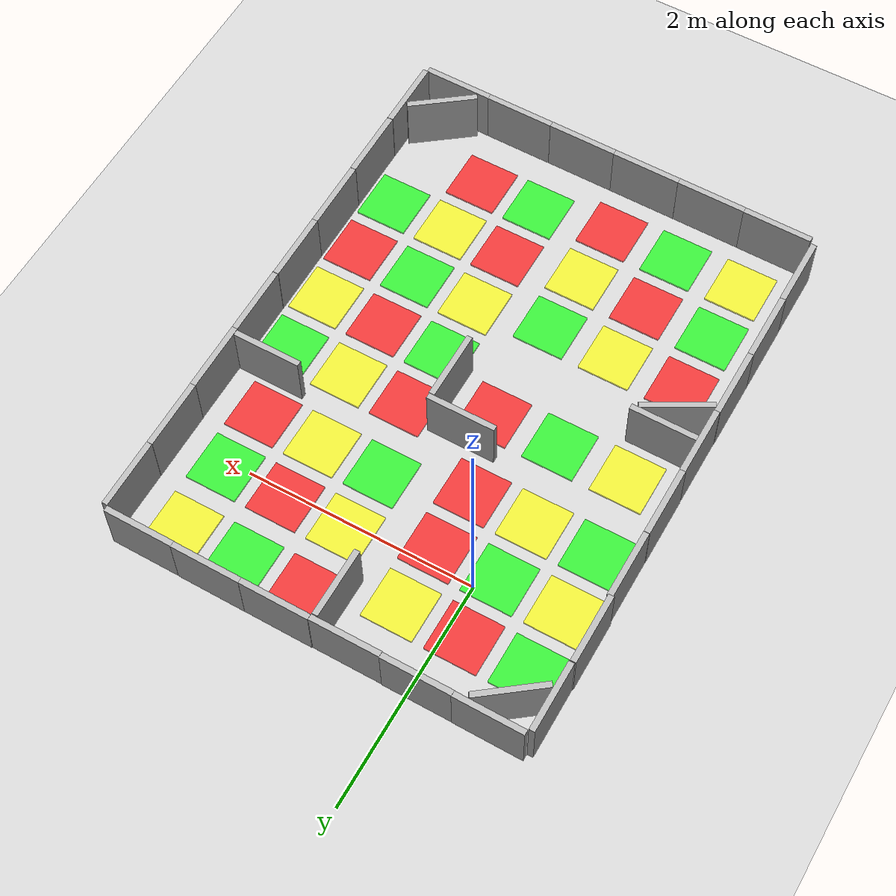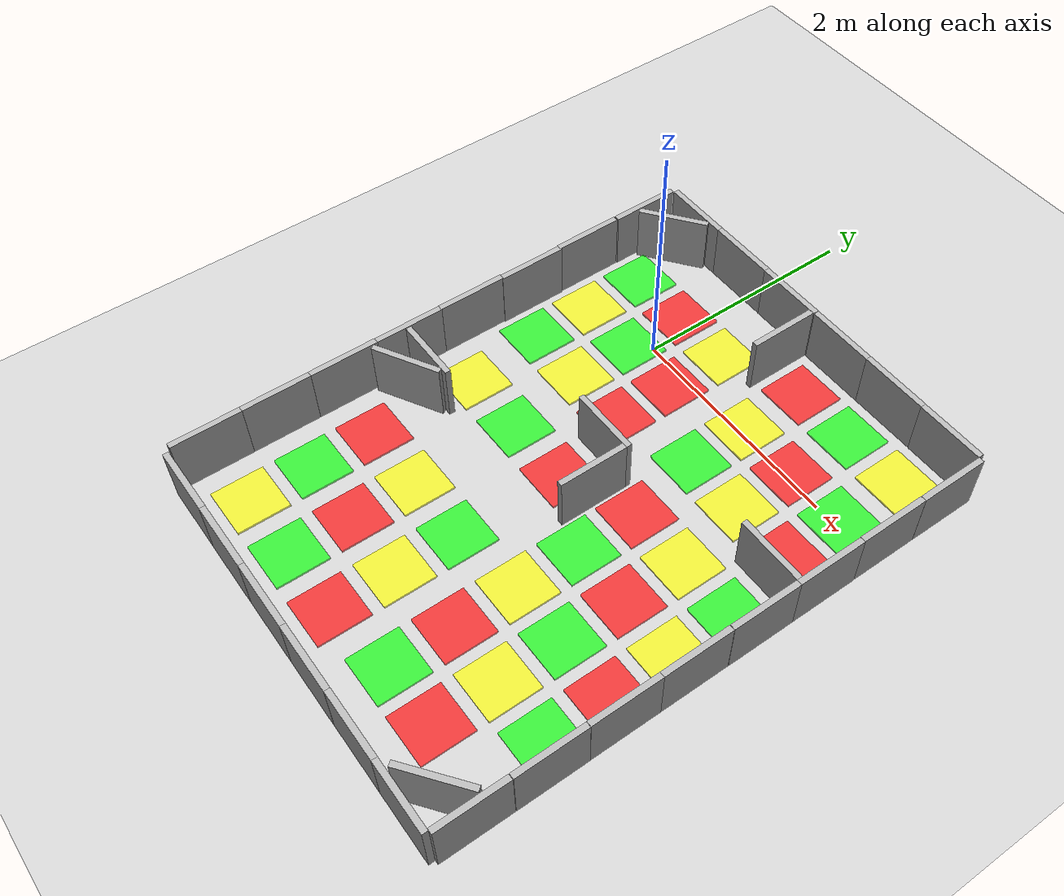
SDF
<sdf version="1.8">
 <world name="default">
  <model name="ground_plane">
   <static>true</static>
   <link name="link">
    <collision name="collision">
     <geometry><plane><normal>0 0 1</normal><size>100 100</size></plane></geometry>
    </collision>
    <visual name="visual">
     <geometry><plane><normal>0 0 1</normal><size>100 100</size></plane></geometry>
     <material>
      <ambient>0.800000012 0.800000012 0.800000012 1</ambient>
      <diffuse>0.800000012 0.800000012 0.800000012 1</diffuse>
      <specular>0.800000012 0.800000012 0.800000012 1</specular>
     </material>
    </visual>
    <inertial>
     <mass>1</mass>
     <inertia><ixx>1</ixx><ixy>0</ixy><ixz>0</ixz><iyy>1</iyy><iyz>0</iyz><izz>1</izz></inertia>
    </inertial>
   </link>
  </model>
  <model name="box">
   <pose>-1.0242099761962891 0.67777901887893677 0.26292604207992554 0 0 0</pose>
   <link name="box_link">
    <inertial>
     <inertia><ixx>0.16666</ixx><ixy>0</ixy><ixz>0</ixz><iyy>0.16666</iyy><iyz>0</iyz><izz>0.16666</izz></inertia>
     <mass>1</mass>
    </inertial>
    <collision name="box_collision">
     <geometry><box><size>0.050000000000000003 0.55 0.5</size></box></geometry>
    </collision>
    <visual name="box_visual">
     <geometry><box><size>0.050000000000000003 0.59999999999999998 0.5</size></box></geometry>
     <material>
      <ambient>0.300000012 0.300000012 0.300000012 1</ambient>
      <diffuse>0.699999988 0.699999988 0.699999988 1</diffuse>
      <specular>1 1 1 1</specular>
     </material>
    </visual>
   </link>
   <static>false</static>
  </model>
  <model name="box_1">
   <pose>-1.03 0.070000000000000007 0.26000000000000001 0 0 0</pose>
   <link name="box_link">
    <inertial>
     <inertia><ixx>0.16666</ixx><ixy>0</ixy><ixz>0</ixz><iyy>0.16666</iyy><iyz>0</iyz><izz>0.16666</izz></inertia>
     <mass>1</mass>
    </inertial>
    <collision name="box_collision">
     <geometry><box><size>0.050000000000000003 0.55 0.5</size></box></geometry>
    </collision>
    <visual name="box_visual">
     <geometry><box><size>0.050000000000000003 0.59999999999999998 0.5</size></box></geometry>
     <material>
      <ambient>0.300000012 0.300000012 0.300000012 1</ambient>
      <diffuse>0.699999988 0.699999988 0.699999988 1</diffuse>
      <specular>1 1 1 1</specular>
     </material>
    </visual>
   </link>
   <static>false</static>
  </model>
  <model name="box_2">
   <pose>-1.02 -0.52000000000000002 0.26000000000000001 0 0 0</pose>
   <link name="box_link">
    <inertial>
     <inertia><ixx>0.16666</ixx><ixy>0</ixy><ixz>0</ixz><iyy>0.16666</iyy><iyz>0</iyz><izz>0.16666</izz></inertia>
     <mass>1</mass>
    </inertial>
    <collision name="box_collision">
     <geometry><box><size>0.050000000000000003 0.55 0.5</size></box></geometry>
    </collision>
    <visual name="box_visual">
     <geometry><box><size>0.050000000000000003 0.59999999999999998 0.5</size></box></geometry>
     <material>
      <ambient>0.300000012 0.300000012 0.300000012 1</ambient>
      <diffuse>0.699999988 0.699999988 0.699999988 1</diffuse>
      <specular>1 1 1 1</specular>
     </material>
    </visual>
   </link>
   <static>false</static>
  </model>
  <model name="box_3">
   <pose>-1.0226199626922607 -1.1138999462127686 0.26708531379699707 0 0 0</pose>
   <link name="box_link">
    <inertial>
     <inertia><ixx>0.16666</ixx><ixy>0</ixy><ixz>0</ixz><iyy>0.16666</iyy><iyz>0</iyz><izz>0.16666</izz></inertia>
     <mass>1</mass>
    </inertial>
    <collision name="box_collision">
     <geometry><box><size>0.050000000000000003 0.55 0.5</size></box></geometry>
    </collision>
    <visual name="box_visual">
     <geometry><box><size>0.050000000000000003 0.59999999999999998 0.5</size></box></geometry>
     <material>
      <ambient>0.300000012 0.300000012 0.300000012 1</ambient>
      <diffuse>0.699999988 0.699999988 0.699999988 1</diffuse>
      <specular>1 1 1 1</specular>
     </material>
    </visual>
   </link>
   <static>false</static>
  </model>
  <model name="box_4">
   <pose>-1.0205800533294678 -1.7115800380706787 0.26702764630317688 0 0 0</pose>
   <link name="box_link">
    <inertial>
     <inertia><ixx>0.16666</ixx><ixy>0</ixy><ixz>0</ixz><iyy>0.16666</iyy><iyz>0</iyz><izz>0.16666</izz></inertia>
     <mass>1</mass>
    </inertial>
    <collision name="box_collision">
     <geometry><box><size>0.050000000000000003 0.55 0.5</size></box></geometry>
    </collision>
    <visual name="box_visual">
     <geometry><box><size>0.050000000000000003 0.59999999999999998 0.5</size></box></geometry>
     <material>
      <ambient>0.300000012 0.300000012 0.300000012 1</ambient>
      <diffuse>0.699999988 0.699999988 0.699999988 1</diffuse>
      <specular>1 1 1 1</specular>
     </material>
    </visual>
   </link>
   <static>false</static>
  </model>
  <model name="box_5">
   <pose>-1.023419976234436 -2.3114299774169922 0.26691371202468872 0 0 0</pose>
   <link name="box_link">
    <inertial>
     <inertia><ixx>0.16666</ixx><ixy>0</ixy><ixz>0</ixz><iyy>0.16666</iyy><iyz>0</iyz><izz>0.16666</izz></inertia>
     <mass>1</mass>
    </inertial>
    <collision name="box_collision">
     <geometry><box><size>0.050000000000000003 0.55 0.5</size></box></geometry>
    </collision>
    <visual name="box_visual">
     <geometry><box><size>0.050000000000000003 0.59999999999999998 0.5</size></box></geometry>
     <material>
      <ambient>0.300000012 0.300000012 0.300000012 1</ambient>
      <diffuse>0.699999988 0.699999988 0.699999988 1</diffuse>
      <specular>1 1 1 1</specular>
     </material>
    </visual>
   </link>
   <static>false</static>
  </model>
  <model name="box_6">
   <pose>-1.0233800411224365 -2.9101500511169434 0.26712024211883545 0 0 0</pose>
   <link name="box_link">
    <inertial>
     <inertia><ixx>0.16666</ixx><ixy>0</ixy><ixz>0</ixz><iyy>0.16666</iyy><iyz>0</iyz><izz>0.16666</izz></inertia>
     <mass>1</mass>
    </inertial>
    <collision name="box_collision">
     <geometry><box><size>0.050000000000000003 0.55 0.5</size></box></geometry>
    </collision>
    <visual name="box_visual">
     <geometry><box><size>0.050000000000000003 0.59999999999999998 0.5</size></box></geometry>
     <material>
      <ambient>0.300000012 0.300000012 0.300000012 1</ambient>
      <diffuse>0.699999988 0.699999988 0.699999988 1</diffuse>
      <specular>1 1 1 1</specular>
     </material>
    </visual>
   </link>
   <static>false</static>
  </model>
  <model name="box_7">
   <pose>-1.0221500396728516 -3.5036098957061768 0.26729947328567505 0 0 0</pose>
   <link name="box_link">
    <inertial>
     <inertia><ixx>0.16666</ixx><ixy>0</ixy><ixz>0</ixz><iyy>0.16666</iyy><iyz>0</iyz><izz>0.16666</izz></inertia>
     <mass>1</mass>
    </inertial>
    <collision name="box_collision">
     <geometry><box><size>0.050000000000000003 0.55 0.5</size></box></geometry>
    </collision>
    <visual name="box_visual">
     <geometry><box><size>0.050000000000000003 0.59999999999999998 0.5</size></box></geometry>
     <material>
      <ambient>0.300000012 0.300000012 0.300000012 1</ambient>
      <diffuse>0.699999988 0.699999988 0.699999988 1</diffuse>
      <specular>1 1 1 1</specular>
     </material>
    </visual>
   </link>
   <static>false</static>
  </model>
  <model name="box_8">
   <pose>-0.69749999046325684 1.0066399574279787 0.25750440359115601 0 0 1.5658000872875657</pose>
   <link name="box_link">
    <inertial>
     <inertia><ixx>0.16666</ixx><ixy>0</ixy><ixz>0</ixz><iyy>0.16666</iyy><iyz>0</iyz><izz>0.16666</izz></inertia>
     <mass>1</mass>
    </inertial>
    <collision name="box_collision">
     <geometry><box><size>0.050000000000000003 0.55 0.5</size></box></geometry>
    </collision>
    <visual name="box_visual">
     <geometry><box><size>0.050000000000000003 0.59999999999999998 0.5</size></box></geometry>
     <material>
      <ambient>0.300000012 0.300000012 0.300000012 1</ambient>
      <diffuse>0.699999988 0.699999988 0.699999988 1</diffuse>
      <specular>1 1 1 1</specular>
     </material>
    </visual>
   </link>
   <static>false</static>
  </model>
  <model name="box_8_1">
   <pose>-0.10089799761772156 1.0029499530792234 0.26086625456809998 0 0 1.56841005300998</pose>
   <link name="box_link">
    <inertial>
     <inertia><ixx>0.16666</ixx><ixy>0</ixy><ixz>0</ixz><iyy>0.16666</iyy><iyz>0</iyz><izz>0.16666</izz></inertia>
     <mass>1</mass>
    </inertial>
    <collision name="box_collision">
     <geometry><box><size>0.050000000000000003 0.55 0.5</size></box></geometry>
    </collision>
    <visual name="box_visual">
     <geometry><box><size>0.050000000000000003 0.59999999999999998 0.5</size></box></geometry>
     <material>
      <ambient>0.300000012 0.300000012 0.300000012 1</ambient>
      <diffuse>0.699999988 0.699999988 0.699999988 1</diffuse>
      <specular>1 1 1 1</specular>
     </material>
    </visual>
   </link>
   <static>false</static>
  </model>
  <model name="box_8_2">
   <pose>0.4999748468399049 0.99842858314514138 0.2626970112323761 0 0 1.5700000841906609</pose>
   <link name="box_link">
    <inertial>
     <inertia><ixx>0.16666</ixx><ixy>0</ixy><ixz>0</ixz><iyy>0.16666</iyy><iyz>0</iyz><izz>0.16666</izz></inertia>
     <mass>1</mass>
    </inertial>
    <collision name="box_collision">
     <geometry><box><size>0.050000000000000003 0.55 0.5</size></box></geometry>
    </collision>
    <visual name="box_visual">
     <geometry><box><size>0.050000000000000003 0.59999999999999998 0.5</size></box></geometry>
     <material>
      <ambient>0.300000012 0.300000012 0.300000012 1</ambient>
      <diffuse>0.699999988 0.699999988 0.699999988 1</diffuse>
      <specular>1 1 1 1</specular>
     </material>
    </visual>
   </link>
   <static>false</static>
  </model>
  <model name="box_8_3">
   <pose>1.1022270375607515 0.99910312174961913 0.25750398635864258 0 0 1.5658000872875657</pose>
   <link name="box_link">
    <inertial>
     <inertia><ixx>0.16666</ixx><ixy>0</ixy><ixz>0</ixz><iyy>0.16666</iyy><iyz>0</iyz><izz>0.16666</izz></inertia>
     <mass>1</mass>
    </inertial>
    <collision name="box_collision">
     <geometry><box><size>0.050000000000000003 0.55 0.5</size></box></geometry>
    </collision>
    <visual name="box_visual">
     <geometry><box><size>0.050000000000000003 0.59999999999999998 0.5</size></box></geometry>
     <material>
      <ambient>0.300000012 0.300000012 0.300000012 1</ambient>
      <diffuse>0.699999988 0.699999988 0.699999988 1</diffuse>
      <specular>1 1 1 1</specular>
     </material>
    </visual>
   </link>
   <static>false</static>
  </model>
  <model name="box_8_4">
   <pose>1.701962914249203 0.99650460313267275 0.25750398635864258 0 0 1.5658000872875657</pose>
   <link name="box_link">
    <inertial>
     <inertia><ixx>0.16666</ixx><ixy>0</ixy><ixz>0</ixz><iyy>0.16666</iyy><iyz>0</iyz><izz>0.16666</izz></inertia>
     <mass>1</mass>
    </inertial>
    <collision name="box_collision">
     <geometry><box><size>0.050000000000000003 0.55 0.5</size></box></geometry>
    </collision>
    <visual name="box_visual">
     <geometry><box><size>0.050000000000000003 0.59999999999999998 0.5</size></box></geometry>
     <material>
      <ambient>0.300000012 0.300000012 0.300000012 1</ambient>
      <diffuse>0.699999988 0.699999988 0.699999988 1</diffuse>
      <specular>1 1 1 1</specular>
     </material>
    </visual>
   </link>
   <static>false</static>
  </model>
  <model name="box_8_5">
   <pose>2.3000763394988408 0.99137905356510148 0.25750398635864258 0 0 1.5658000872875657</pose>
   <link name="box_link">
    <inertial>
     <inertia><ixx>0.16666</ixx><ixy>0</ixy><ixz>0</ixz><iyy>0.16666</iyy><iyz>0</iyz><izz>0.16666</izz></inertia>
     <mass>1</mass>
    </inertial>
    <collision name="box_collision">
     <geometry><box><size>0.050000000000000003 0.55 0.5</size></box></geometry>
    </collision>
    <visual name="box_visual">
     <geometry><box><size>0.050000000000000003 0.59999999999999998 0.5</size></box></geometry>
     <material>
      <ambient>0.300000012 0.300000012 0.300000012 1</ambient>
      <diffuse>0.699999988 0.699999988 0.699999988 1</diffuse>
      <specular>1 1 1 1</specular>
     </material>
    </visual>
   </link>
   <static>false</static>
  </model>
  <model name="box_9">
   <pose>2.626252963941734 0.66552933060747566 0.26292601227760315 0 0 0</pose>
   <link name="box_link">
    <inertial>
     <inertia><ixx>0.16666</ixx><ixy>0</ixy><ixz>0</ixz><iyy>0.16666</iyy><iyz>0</iyz><izz>0.16666</izz></inertia>
     <mass>1</mass>
    </inertial>
    <collision name="box_collision">
     <geometry><box><size>0.050000000000000003 0.55 0.5</size></box></geometry>
    </collision>
    <visual name="box_visual">
     <geometry><box><size>0.050000000000000003 0.59999999999999998 0.5</size></box></geometry>
     <material>
      <ambient>0.300000012 0.300000012 0.300000012 1</ambient>
      <diffuse>0.699999988 0.699999988 0.699999988 1</diffuse>
      <specular>1 1 1 1</specular>
     </material>
    </visual>
   </link>
   <static>false</static>
  </model>
  <model name="box_10">
   <pose>2.625702667551475 0.065195542834084463 0.26292601227760315 0 0 0</pose>
   <link name="box_link">
    <inertial>
     <inertia><ixx>0.16666</ixx><ixy>0</ixy><ixz>0</ixz><iyy>0.16666</iyy><iyz>0</iyz><izz>0.16666</izz></inertia>
     <mass>1</mass>
    </inertial>
    <collision name="box_collision">
     <geometry><box><size>0.050000000000000003 0.55 0.5</size></box></geometry>
    </collision>
    <visual name="box_visual">
     <geometry><box><size>0.050000000000000003 0.59999999999999998 0.5</size></box></geometry>
     <material>
      <ambient>0.300000012 0.300000012 0.300000012 1</ambient>
      <diffuse>0.699999988 0.699999988 0.699999988 1</diffuse>
      <specular>1 1 1 1</specular>
     </material>
    </visual>
   </link>
   <static>false</static>
  </model>
  <model name="box_11">
   <pose>2.6275927926499159 -0.53502727789761817 0.26292601227760315 0 0 0</pose>
   <link name="box_link">
    <inertial>
     <inertia><ixx>0.16666</ixx><ixy>0</ixy><ixz>0</ixz><iyy>0.16666</iyy><iyz>0</iyz><izz>0.16666</izz></inertia>
     <mass>1</mass>
    </inertial>
    <collision name="box_collision">
     <geometry><box><size>0.050000000000000003 0.55 0.5</size></box></geometry>
    </collision>
    <visual name="box_visual">
     <geometry><box><size>0.050000000000000003 0.59999999999999998 0.5</size></box></geometry>
     <material>
      <ambient>0.300000012 0.300000012 0.300000012 1</ambient>
      <diffuse>0.699999988 0.699999988 0.699999988 1</diffuse>
      <specular>1 1 1 1</specular>
     </material>
    </visual>
   </link>
   <static>false</static>
  </model>
  <model name="box_12">
   <pose>2.6281152505346235 -1.1352186579326506 0.26292601227760315 0 0 0</pose>
   <link name="box_link">
    <inertial>
     <inertia><ixx>0.16666</ixx><ixy>0</ixy><ixz>0</ixz><iyy>0.16666</iyy><iyz>0</iyz><izz>0.16666</izz></inertia>
     <mass>1</mass>
    </inertial>
    <collision name="box_collision">
     <geometry><box><size>0.050000000000000003 0.55 0.5</size></box></geometry>
    </collision>
    <visual name="box_visual">
     <geometry><box><size>0.050000000000000003 0.59999999999999998 0.5</size></box></geometry>
     <material>
      <ambient>0.300000012 0.300000012 0.300000012 1</ambient>
      <diffuse>0.699999988 0.699999988 0.699999988 1</diffuse>
      <specular>1 1 1 1</specular>
     </material>
    </visual>
   </link>
   <static>false</static>
  </model>
  <model name="box_13">
   <pose>2.6267948704934359 -1.7371728259073804 0.26292601227760315 0 0 0</pose>
   <link name="box_link">
    <inertial>
     <inertia><ixx>0.16666</ixx><ixy>0</ixy><ixz>0</ixz><iyy>0.16666</iyy><iyz>0</iyz><izz>0.16666</izz></inertia>
     <mass>1</mass>
    </inertial>
    <collision name="box_collision">
     <geometry><box><size>0.050000000000000003 0.55 0.5</size></box></geometry>
    </collision>
    <visual name="box_visual">
     <geometry><box><size>0.050000000000000003 0.59999999999999998 0.5</size></box></geometry>
     <material>
      <ambient>0.300000012 0.300000012 0.300000012 1</ambient>
      <diffuse>0.699999988 0.699999988 0.699999988 1</diffuse>
      <specular>1 1 1 1</specular>
     </material>
    </visual>
   </link>
   <static>false</static>
  </model>
  <model name="box_14">
   <pose>2.6267614305352369 -2.3366292042299199 0.26292601227760315 0 0 0</pose>
   <link name="box_link">
    <inertial>
     <inertia><ixx>0.16666</ixx><ixy>0</ixy><ixz>0</ixz><iyy>0.16666</iyy><iyz>0</iyz><izz>0.16666</izz></inertia>
     <mass>1</mass>
    </inertial>
    <collision name="box_collision">
     <geometry><box><size>0.050000000000000003 0.55 0.5</size></box></geometry>
    </collision>
    <visual name="box_visual">
     <geometry><box><size>0.050000000000000003 0.59999999999999998 0.5</size></box></geometry>
     <material>
      <ambient>0.300000012 0.300000012 0.300000012 1</ambient>
      <diffuse>0.699999988 0.699999988 0.699999988 1</diffuse>
      <specular>1 1 1 1</specular>
     </material>
    </visual>
   </link>
   <static>false</static>
  </model>
  <model name="box_15">
   <pose>2.6280006269886167 -2.9389073220340531 0.26292601227760315 0 0 0</pose>
   <link name="box_link">
    <inertial>
     <inertia><ixx>0.16666</ixx><ixy>0</ixy><ixz>0</ixz><iyy>0.16666</iyy><iyz>0</iyz><izz>0.16666</izz></inertia>
     <mass>1</mass>
    </inertial>
    <collision name="box_collision">
     <geometry><box><size>0.050000000000000003 0.55 0.5</size></box></geometry>
    </collision>
    <visual name="box_visual">
     <geometry><box><size>0.050000000000000003 0.59999999999999998 0.5</size></box></geometry>
     <material>
      <ambient>0.300000012 0.300000012 0.300000012 1</ambient>
      <diffuse>0.699999988 0.699999988 0.699999988 1</diffuse>
      <specular>1 1 1 1</specular>
     </material>
    </visual>
   </link>
   <static>false</static>
  </model>
  <model name="box_16">
   <pose>2.6274764676781759 -3.5421945732274764 0.26292601227760315 0 0 0</pose>
   <link name="box_link">
    <inertial>
     <inertia><ixx>0.16666</ixx><ixy>0</ixy><ixz>0</ixz><iyy>0.16666</iyy><iyz>0</iyz><izz>0.16666</izz></inertia>
     <mass>1</mass>
    </inertial>
    <collision name="box_collision">
     <geometry><box><size>0.050000000000000003 0.55 0.5</size></box></geometry>
    </collision>
    <visual name="box_visual">
     <geometry><box><size>0.050000000000000003 0.59999999999999998 0.5</size></box></geometry>
     <material>
      <ambient>0.300000012 0.300000012 0.300000012 1</ambient>
      <diffuse>0.699999988 0.699999988 0.699999988 1</diffuse>
      <specular>1 1 1 1</specular>
     </material>
    </visual>
   </link>
   <static>false</static>
  </model>
  <model name="box_8_5_1">
   <pose>2.3170975934162765 -3.8655655792473209 0.25750398635864258 0 0 1.5658000872875657</pose>
   <link name="box_link">
    <inertial>
     <inertia><ixx>0.16666</ixx><ixy>0</ixy><ixz>0</ixz><iyy>0.16666</iyy><iyz>0</iyz><izz>0.16666</izz></inertia>
     <mass>1</mass>
    </inertial>
    <collision name="box_collision">
     <geometry><box><size>0.050000000000000003 0.55 0.5</size></box></geometry>
    </collision>
    <visual name="box_visual">
     <geometry><box><size>0.050000000000000003 0.59999999999999998 0.5</size></box></geometry>
     <material>
      <ambient>0.300000012 0.300000012 0.300000012 1</ambient>
      <diffuse>0.699999988 0.699999988 0.699999988 1</diffuse>
      <specular>1 1 1 1</specular>
     </material>
    </visual>
   </link>
   <static>false</static>
  </model>
  <model name="box_8_5_2">
   <pose>1.7183380653296056 -3.862349183830966 0.25750398635864258 0 0 1.5658000872875657</pose>
   <link name="box_link">
    <inertial>
     <inertia><ixx>0.16666</ixx><ixy>0</ixy><ixz>0</ixz><iyy>0.16666</iyy><iyz>0</iyz><izz>0.16666</izz></inertia>
     <mass>1</mass>
    </inertial>
    <collision name="box_collision">
     <geometry><box><size>0.050000000000000003 0.55 0.5</size></box></geometry>
    </collision>
    <visual name="box_visual">
     <geometry><box><size>0.050000000000000003 0.59999999999999998 0.5</size></box></geometry>
     <material>
      <ambient>0.300000012 0.300000012 0.300000012 1</ambient>
      <diffuse>0.699999988 0.699999988 0.699999988 1</diffuse>
      <specular>1 1 1 1</specular>
     </material>
    </visual>
   </link>
   <static>false</static>
  </model>
  <model name="box_8_5_3">
   <pose>1.1190764522698835 -3.8600206948799998 0.25750398635864258 0 0 1.5658000872875657</pose>
   <link name="box_link">
    <inertial>
     <inertia><ixx>0.16666</ixx><ixy>0</ixy><ixz>0</ixz><iyy>0.16666</iyy><iyz>0</iyz><izz>0.16666</izz></inertia>
     <mass>1</mass>
    </inertial>
    <collision name="box_collision">
     <geometry><box><size>0.050000000000000003 0.55 0.5</size></box></geometry>
    </collision>
    <visual name="box_visual">
     <geometry><box><size>0.050000000000000003 0.59999999999999998 0.5</size></box></geometry>
     <material>
      <ambient>0.300000012 0.300000012 0.300000012 1</ambient>
      <diffuse>0.699999988 0.699999988 0.699999988 1</diffuse>
      <specular>1 1 1 1</specular>
     </material>
    </visual>
   </link>
   <static>false</static>
  </model>
  <model name="box_8_5_4">
   <pose>0.52016775223423839 -3.8568482565905109 0.25750398635864258 0 0 1.5658000872875657</pose>
   <link name="box_link">
    <inertial>
     <inertia><ixx>0.16666</ixx><ixy>0</ixy><ixz>0</ixz><iyy>0.16666</iyy><iyz>0</iyz><izz>0.16666</izz></inertia>
     <mass>1</mass>
    </inertial>
    <collision name="box_collision">
     <geometry><box><size>0.050000000000000003 0.55 0.5</size></box></geometry>
    </collision>
    <visual name="box_visual">
     <geometry><box><size>0.050000000000000003 0.59999999999999998 0.5</size></box></geometry>
     <material>
      <ambient>0.300000012 0.300000012 0.300000012 1</ambient>
      <diffuse>0.699999988 0.699999988 0.699999988 1</diffuse>
      <specular>1 1 1 1</specular>
     </material>
    </visual>
   </link>
   <static>false</static>
  </model>
  <model name="box_8_5_5">
   <pose>-0.080121158882265009 -3.8538894517536315 0.25750398635864258 0 0 1.5658000872875657</pose>
   <link name="box_link">
    <inertial>
     <inertia><ixx>0.16666</ixx><ixy>0</ixy><ixz>0</ixz><iyy>0.16666</iyy><iyz>0</iyz><izz>0.16666</izz></inertia>
     <mass>1</mass>
    </inertial>
    <collision name="box_collision">
     <geometry><box><size>0.050000000000000003 0.55 0.5</size></box></geometry>
    </collision>
    <visual name="box_visual">
     <geometry><box><size>0.050000000000000003 0.59999999999999998 0.5</size></box></geometry>
     <material>
      <ambient>0.300000012 0.300000012 0.300000012 1</ambient>
      <diffuse>0.699999988 0.699999988 0.699999988 1</diffuse>
      <specular>1 1 1 1</specular>
     </material>
    </visual>
   </link>
   <static>false</static>
  </model>
  <model name="box_8_5_6">
   <pose>-0.67984316614260165 -3.8498007437380806 0.25750398635864258 0 0 1.5658000872875657</pose>
   <link name="box_link">
    <inertial>
     <inertia><ixx>0.16666</ixx><ixy>0</ixy><ixz>0</ixz><iyy>0.16666</iyy><iyz>0</iyz><izz>0.16666</izz></inertia>
     <mass>1</mass>
    </inertial>
    <collision name="box_collision">
     <geometry><box><size>0.050000000000000003 0.55 0.5</size></box></geometry>
    </collision>
    <visual name="box_visual">
     <geometry><box><size>0.050000000000000003 0.59999999999999998 0.5</size></box></geometry>
     <material>
      <ambient>0.300000012 0.300000012 0.300000012 1</ambient>
      <diffuse>0.699999988 0.699999988 0.699999988 1</diffuse>
      <specular>1 1 1 1</specular>
     </material>
    </visual>
   </link>
   <static>false</static>
  </model>
  <model name="box_8_5_7">
   <pose>-0.71799231176185963 -1.7295482278429848 0.25750398635864258 0 0 1.5658000872875657</pose>
   <link name="box_link">
    <inertial>
     <inertia><ixx>0.16666</ixx><ixy>0</ixy><ixz>0</ixz><iyy>0.16666</iyy><iyz>0</iyz><izz>0.16666</izz></inertia>
     <mass>1</mass>
    </inertial>
    <collision name="box_collision">
     <geometry><box><size>0.050000000000000003 0.55 0.5</size></box></geometry>
    </collision>
    <visual name="box_visual">
     <geometry><box><size>0.050000000000000003 0.59999999999999998 0.5</size></box></geometry>
     <material>
      <ambient>0.300000012 0.300000012 0.300000012 1</ambient>
      <diffuse>0.699999988 0.699999988 0.699999988 1</diffuse>
      <specular>1 1 1 1</specular>
     </material>
    </visual>
   </link>
   <static>false</static>
  </model>
  <model name="box_8_5_9">
   <pose>2.3106882813119443 -0.80301534855683077 0.25750398635864258 0 0 1.5658000872875657</pose>
   <link name="box_link">
    <inertial>
     <inertia><ixx>0.16666</ixx><ixy>0</ixy><ixz>0</ixz><iyy>0.16666</iyy><iyz>0</iyz><izz>0.16666</izz></inertia>
     <mass>1</mass>
    </inertial>
    <collision name="box_collision">
     <geometry><box><size>0.050000000000000003 0.55 0.5</size></box></geometry>
    </collision>
    <visual name="box_visual">
     <geometry><box><size>0.050000000000000003 0.59999999999999998 0.5</size></box></geometry>
     <material>
      <ambient>0.300000012 0.300000012 0.300000012 1</ambient>
      <diffuse>0.699999988 0.699999988 0.699999988 1</diffuse>
      <specular>1 1 1 1</specular>
     </material>
    </visual>
   </link>
   <static>false</static>
  </model>
  <model name="box_1_1">
   <pose>0.77402352846331013 0.66890409951665486 0.26661500334739685 0 0 0</pose>
   <link name="box_link">
    <inertial>
     <inertia><ixx>0.16666</ixx><ixy>0</ixy><ixz>0</ixz><iyy>0.16666</iyy><iyz>0</iyz><izz>0.16666</izz></inertia>
     <mass>1</mass>
    </inertial>
    <collision name="box_collision">
     <geometry><box><size>0.050000000000000003 0.55 0.5</size></box></geometry>
    </collision>
    <visual name="box_visual">
     <geometry><box><size>0.050000000000000003 0.59999999999999998 0.5</size></box></geometry>
     <material>
      <ambient>0.300000012 0.300000012 0.300000012 1</ambient>
      <diffuse>0.699999988 0.699999988 0.699999988 1</diffuse>
      <specular>1 1 1 1</specular>
     </material>
    </visual>
   </link>
   <static>false</static>
  </model>
  <model name="box_1_2_2">
   <pose>-0.74630128513783545 0.77809146078665803 0.26661500334739685 0 0 -0.9211320022812256</pose>
   <link name="box_link">
    <inertial>
     <inertia><ixx>0.16666</ixx><ixy>0</ixy><ixz>0</ixz><iyy>0.16666</iyy><iyz>0</iyz><izz>0.16666</izz></inertia>
     <mass>1</mass>
    </inertial>
    <collision name="box_collision">
     <geometry><box><size>0.050000000000000003 0.55 0.5</size></box></geometry>
    </collision>
    <visual name="box_visual">
     <geometry><box><size>0.050000000000000003 0.59999999999999998 0.5</size></box></geometry>
     <material>
      <ambient>0.300000012 0.300000012 0.300000012 1</ambient>
      <diffuse>0.699999988 0.699999988 0.699999988 1</diffuse>
      <specular>1 1 1 1</specular>
     </material>
    </visual>
   </link>
   <static>false</static>
  </model>
  <model name="box_1_2_3">
   <pose>2.3426086092275002 -3.6236037284401896 0.26661500334739685 0 0 -0.9211320022812256</pose>
   <link name="box_link">
    <inertial>
     <inertia><ixx>0.16666</ixx><ixy>0</ixy><ixz>0</ixz><iyy>0.16666</iyy><iyz>0</iyz><izz>0.16666</izz></inertia>
     <mass>1</mass>
    </inertial>
    <collision name="box_collision">
     <geometry><box><size>0.050000000000000003 0.55 0.5</size></box></geometry>
    </collision>
    <visual name="box_visual">
     <geometry><box><size>0.050000000000000003 0.59999999999999998 0.5</size></box></geometry>
     <material>
      <ambient>0.300000012 0.300000012 0.300000012 1</ambient>
      <diffuse>0.699999988 0.699999988 0.699999988 1</diffuse>
      <specular>1 1 1 1</specular>
     </material>
    </visual>
   </link>
   <static>false</static>
  </model>
  <model name="box_8_5_8_3">
   <pose>-0.72633250227749258 -1.9181128806837573 0.25750398635864258 0 0 2.0823900577787207</pose>
   <link name="box_link">
    <inertial>
     <inertia><ixx>0.16666</ixx><ixy>0</ixy><ixz>0</ixz><iyy>0.16666</iyy><iyz>0</iyz><izz>0.16666</izz></inertia>
     <mass>1</mass>
    </inertial>
    <collision name="box_collision">
     <geometry><box><size>0.050000000000000003 0.55 0.5</size></box></geometry>
    </collision>
    <visual name="box_visual">
     <geometry><box><size>0.050000000000000003 0.59999999999999998 0.5</size></box></geometry>
     <material>
      <ambient>0.300000012 0.300000012 0.300000012 1</ambient>
      <diffuse>0.699999988 0.699999988 0.699999988 1</diffuse>
      <specular>1 1 1 1</specular>
     </material>
    </visual>
   </link>
   <static>false</static>
  </model>
  <model name="box_1_1_1">
   <pose>0.97109466823778412 -1.3696296970979935 0.26661500334739685 0 0 0</pose>
   <link name="box_link">
    <inertial>
     <inertia><ixx>0.16666</ixx><ixy>0</ixy><ixz>0</ixz><iyy>0.16666</iyy><iyz>0</iyz><izz>0.16666</izz></inertia>
     <mass>1</mass>
    </inertial>
    <collision name="box_collision">
     <geometry><box><size>0.050000000000000003 0.55 0.5</size></box></geometry>
    </collision>
    <visual name="box_visual">
     <geometry><box><size>0.050000000000000003 0.59999999999999998 0.5</size></box></geometry>
     <material>
      <ambient>0.300000012 0.300000012 0.300000012 1</ambient>
      <diffuse>0.699999988 0.699999988 0.699999988 1</diffuse>
      <specular>1 1 1 1</specular>
     </material>
    </visual>
   </link>
   <static>false</static>
  </model>
  <model name="box_8_1_1">
   <pose>0.69148297125501235 -1.0442157666892553 0.26086598634719849 0 0 1.56841005300998</pose>
   <link name="box_link">
    <inertial>
     <inertia><ixx>0.16666</ixx><ixy>0</ixy><ixz>0</ixz><iyy>0.16666</iyy><iyz>0</iyz><izz>0.16666</izz></inertia>
     <mass>1</mass>
    </inertial>
    <collision name="box_collision">
     <geometry><box><size>0.050000000000000003 0.55 0.5</size></box></geometry>
    </collision>
    <visual name="box_visual">
     <geometry><box><size>0.050000000000000003 0.59999999999999998 0.5</size></box></geometry>
     <material>
      <ambient>0.300000012 0.300000012 0.300000012 1</ambient>
      <diffuse>0.699999988 0.699999988 0.699999988 1</diffuse>
      <specular>1 1 1 1</specular>
     </material>
    </visual>
   </link>
   <static>false</static>
  </model>
  <model name="zone_1">
   <static>true</static>
   <pose>-0.7 0.4 0.015 0 0 0</pose>
   <link name="link">
    <visual name="visual">
     <geometry><box><size>0.45 0.45 0.02</size></box></geometry>
     <material><ambient>0 1 0 0.7</ambient><diffuse>0 1 0 0.7</diffuse></material>
    </visual>
   </link>
  </model>
  <model name="zone_2">
   <static>true</static>
   <pose>-0.15 0.4 0.015 0 0 0</pose>
   <link name="link">
    <visual name="visual">
     <geometry><box><size>0.45 0.45 0.02</size></box></geometry>
     <material><ambient>1 0 0 0.7</ambient><diffuse>1 0 0 0.7</diffuse></material>
    </visual>
   </link>
  </model>
  <model name="zone_3">
   <static>true</static>
   <pose>0.4 0.4 0.015 0 0 0</pose>
   <link name="link">
    <visual name="visual">
     <geometry><box><size>0.45 0.45 0.02</size></box></geometry>
     <material><ambient>1 1 0 0.7</ambient><diffuse>1 1 0 0.7</diffuse></material>
    </visual>
   </link>
  </model>
  <model name="zone_4">
   <static>true</static>
   <pose>-0.7 -0.15 0.015 0 0 0</pose>
   <link name="link">
    <visual name="visual">
     <geometry><box><size>0.45 0.45 0.02</size></box></geometry>
     <material><ambient>1 1 0 0.7</ambient><diffuse>1 1 0 0.7</diffuse></material>
    </visual>
   </link>
  </model>
  <model name="zone_5">
   <static>true</static>
   <pose>-0.15 -0.15 0.015 0 0 0</pose>
   <link name="link">
    <visual name="visual">
     <geometry><box><size>0.45 0.45 0.02</size></box></geometry>
     <material><ambient>0 1 0 0.7</ambient><diffuse>0 1 0 0.7</diffuse></material>
    </visual>
   </link>
  </model>
  <model name="zone_6">
   <static>true</static>
   <pose>0.4 -0.15 0.015 0 0 0</pose>
   <link name="link">
    <visual name="visual">
     <geometry><box><size>0.45 0.45 0.02</size></box></geometry>
     <material><ambient>1 0 0 0.7</ambient><diffuse>1 0 0 0.7</diffuse></material>
    </visual>
   </link>
  </model>
  <model name="zone_7">
   <static>true</static>
   <pose>-0.7 -0.7 0.015 0 0 0</pose>
   <link name="link">
    <visual name="visual">
     <geometry><box><size>0.45 0.45 0.02</size></box></geometry>
     <material><ambient>0 1 0 0.7</ambient><diffuse>0 1 0 0.7</diffuse></material>
    </visual>
   </link>
  </model>
  <model name="zone_8">
   <static>true</static>
   <pose>-0.15 -0.7 0.015 0 0 0</pose>
   <link name="link">
    <visual name="visual">
     <geometry><box><size>0.45 0.45 0.02</size></box></geometry>
     <material><ambient>1 1 0 0.7</ambient><diffuse>1 1 0 0.7</diffuse></material>
    </visual>
   </link>
  </model>
  <model name="zone_9">
   <static>true</static>
   <pose>0.4 -0.7 0.015 0 0 0</pose>
   <link name="link">
    <visual name="visual">
     <geometry><box><size>0.45 0.45 0.02</size></box></geometry>
     <material><ambient>1 0 0 0.7</ambient><diffuse>1 0 0 0.7</diffuse></material>
    </visual>
   </link>
  </model>
  <model name="zone_10">
   <static>true</static>
   <pose>1.10 0.65 0.015 0 0 0</pose>
   <link name="link">
    <visual name="visual">
     <geometry><box><size>0.45 0.45 0.02</size></box></geometry>
     <material><ambient>1 0 0 0.7</ambient><diffuse>1 0 0 0.7</diffuse></material>
    </visual>
   </link>
  </model>
  <model name="zone_11">
   <static>true</static>
   <pose>1.65 0.65 0.015 0 0 0</pose>
   <link name="link">
    <visual name="visual">
     <geometry><box><size>0.45 0.45 0.02</size></box></geometry>
     <material><ambient>0 1 0 0.7</ambient><diffuse>0 1 0 0.7</diffuse></material>
    </visual>
   </link>
  </model>
  <model name="zone_12">
   <static>true</static>
   <pose>2.20 0.65 0.015 0 0 0</pose>
   <link name="link">
    <visual name="visual">
     <geometry><box><size>0.45 0.45 0.02</size></box></geometry>
     <material><ambient>1 1 0 0.7</ambient><diffuse>1 1 0 0.7</diffuse></material>
    </visual>
   </link>
  </model>
  <model name="zone_13">
   <static>true</static>
   <pose>1.10 0.05 0.015 0 0 0</pose>
   <link name="link">
    <visual name="visual">
     <geometry><box><size>0.45 0.45 0.02</size></box></geometry>
     <material><ambient>1 1 0 0.7</ambient><diffuse>1 1 0 0.7</diffuse></material>
    </visual>
   </link>
  </model>
  <model name="zone_14">
   <static>true</static>
   <pose>1.65 0.05 0.015 0 0 0</pose>
   <link name="link">
    <visual name="visual">
     <geometry><box><size>0.45 0.45 0.02</size></box></geometry>
     <material><ambient>1 0 0 0.7</ambient><diffuse>1 0 0 0.7</diffuse></material>
    </visual>
   </link>
  </model>
  <model name="zone_15">
   <static>true</static>
   <pose>2.20 0.05 0.015 0 0 0</pose>
   <link name="link">
    <visual name="visual">
     <geometry><box><size>0.45 0.45 0.02</size></box></geometry>
     <material><ambient>0 1 0 0.7</ambient><diffuse>0 1 0 0.7</diffuse></material>
    </visual>
   </link>
  </model>
  <model name="zone_16">
   <static>true</static>
   <pose>1.10 -0.5 0.015 0 0 0</pose>
   <link name="link">
    <visual name="visual">
     <geometry><box><size>0.45 0.45 0.02</size></box></geometry>
     <material><ambient>0 1 0 0.7</ambient><diffuse>0 1 0 0.7</diffuse></material>
    </visual>
   </link>
  </model>
  <model name="zone_17">
   <static>true</static>
   <pose>1.65 -0.5 0.015 0 0 0</pose>
   <link name="link">
    <visual name="visual">
     <geometry><box><size>0.45 0.45 0.02</size></box></geometry>
     <material><ambient>1 1 0 0.7</ambient><diffuse>1 1 0 0.7</diffuse></material>
    </visual>
   </link>
  </model>
  <model name="zone_18">
   <static>true</static>
   <pose>2.20 -0.5 0.015 0 0 0</pose>
   <link name="link">
    <visual name="visual">
     <geometry><box><size>0.45 0.45 0.02</size></box></geometry>
     <material><ambient>1 0 0 0.7</ambient><diffuse>1 0 0 0.7</diffuse></material>
    </visual>
   </link>
  </model>
  <model name="zone_19">
   <static>true</static>
   <pose>-0.6 -1.4 0.015 0 0 0</pose>
   <link name="link">
    <visual name="visual">
     <geometry><box><size>0.45 0.45 0.02</size></box></geometry>
     <material><ambient>1 1 0 0.7</ambient><diffuse>1 1 0 0.7</diffuse></material>
    </visual>
   </link>
  </model>
  <model name="zone_20">
   <static>true</static>
   <pose>0.0 -1.4 0.015 0 0 0</pose>
   <link name="link">
    <visual name="visual">
     <geometry><box><size>0.45 0.45 0.02</size></box></geometry>
     <material><ambient>0 1 0 0.7</ambient><diffuse>0 1 0 0.7</diffuse></material>
    </visual>
   </link>
  </model>
  <model name="zone_21">
   <static>true</static>
   <pose>0.6 -1.4 0.015 0 0 0</pose>
   <link name="link">
    <visual name="visual">
     <geometry><box><size>0.45 0.45 0.02</size></box></geometry>
     <material><ambient>1 0 0 0.7</ambient><diffuse>1 0 0 0.7</diffuse></material>
    </visual>
   </link>
  </model>
  <model name="zone_22">
   <static>true</static>
   <pose>-0.6 -2.35 0.015 0 0 0</pose>
   <link name="link">
    <visual name="visual">
     <geometry><box><size>0.45 0.45 0.02</size></box></geometry>
     <material><ambient>1 0 0 0.7</ambient><diffuse>1 0 0 0.7</diffuse></material>
    </visual>
   </link>
  </model>
  <model name="zone_23">
   <static>true</static>
   <pose>0.0 -2.35 0.015 0 0 0</pose>
   <link name="link">
    <visual name="visual">
     <geometry><box><size>0.45 0.45 0.02</size></box></geometry>
     <material><ambient>1 1 0 0.7</ambient><diffuse>1 1 0 0.7</diffuse></material>
    </visual>
   </link>
  </model>
  <model name="zone_24">
   <static>true</static>
   <pose>0.6 -2.35 0.015 0 0 0</pose>
   <link name="link">
    <visual name="visual">
     <geometry><box><size>0.45 0.45 0.02</size></box></geometry>
     <material><ambient>0 1 0 0.7</ambient><diffuse>0 1 0 0.7</diffuse></material>
    </visual>
   </link>
  </model>
  <model name="zone_25">
   <static>true</static>
   <pose>-0.6 -2.90 0.015 0 0 0</pose>
   <link name="link">
    <visual name="visual">
     <geometry><box><size>0.45 0.45 0.02</size></box></geometry>
     <material><ambient>0 1 0 0.7</ambient><diffuse>0 1 0 0.7</diffuse></material>
    </visual>
   </link>
  </model>
  <model name="zone_26">
   <static>true</static>
   <pose>0.0 -2.90 0.015 0 0 0</pose>
   <link name="link">
    <visual name="visual">
     <geometry><box><size>0.45 0.45 0.02</size></box></geometry>
     <material><ambient>1 0 0 0.7</ambient><diffuse>1 0 0 0.7</diffuse></material>
    </visual>
   </link>
  </model>
  <model name="zone_27">
   <static>true</static>
   <pose>0.6 -2.90 0.015 0 0 0</pose>
   <link name="link">
    <visual name="visual">
     <geometry><box><size>0.45 0.45 0.02</size></box></geometry>
     <material><ambient>1 1 0 0.7</ambient><diffuse>1 1 0 0.7</diffuse></material>
    </visual>
   </link>
  </model>
  <model name="zone_28">
   <static>true</static>
   <pose>-0.6 -3.45 0.015 0 0 0</pose>
   <link name="link">
    <visual name="visual">
     <geometry><box><size>0.45 0.45 0.02</size></box></geometry>
     <material><ambient>1 1 0 0.7</ambient><diffuse>1 1 0 0.7</diffuse></material>
    </visual>
   </link>
  </model>
  <model name="zone_29">
   <static>true</static>
   <pose>0.0 -3.45 0.015 0 0 0</pose>
   <link name="link">
    <visual name="visual">
     <geometry><box><size>0.45 0.45 0.02</size></box></geometry>
     <material><ambient>0 1 0 0.7</ambient><diffuse>0 1 0 0.7</diffuse></material>
    </visual>
   </link>
  </model>
  <model name="zone_30">
   <static>true</static>
   <pose>0.6 -3.45 0.015 0 0 0</pose>
   <link name="link">
    <visual name="visual">
     <geometry><box><size>0.45 0.45 0.02</size></box></geometry>
     <material><ambient>1 0 0 0.7</ambient><diffuse>1 0 0 0.7</diffuse></material>
    </visual>
   </link>
  </model>
  <model name="zone_31">
   <static>true</static>
   <pose>1.25 -1.15 0.015 0 0 0</pose>
   <link name="link">
    <visual name="visual">
     <geometry><box><size>0.45 0.45 0.02</size></box></geometry>
     <material><ambient>1 0 0 0.7</ambient><diffuse>1 0 0 0.7</diffuse></material>
    </visual>
   </link>
  </model>
  <model name="zone_32">
   <static>true</static>
   <pose>1.80 -1.15 0.015 0 0 0</pose>
   <link name="link">
    <visual name="visual">
     <geometry><box><size>0.45 0.45 0.02</size></box></geometry>
     <material><ambient>1 1 0 0.7</ambient><diffuse>1 1 0 0.7</diffuse></material>
    </visual>
   </link>
  </model>
  <model name="zone_33">
   <static>true</static>
   <pose>2.35 -1.15 0.015 0 0 0</pose>
   <link name="link">
    <visual name="visual">
     <geometry><box><size>0.45 0.45 0.02</size></box></geometry>
     <material><ambient>0 1 0 0.7</ambient><diffuse>0 1 0 0.7</diffuse></material>
    </visual>
   </link>
  </model>
  <model name="zone_34">
   <static>true</static>
   <pose>1.25 -1.70 0.015 0 0 0</pose>
   <link name="link">
    <visual name="visual">
     <geometry><box><size>0.45 0.45 0.02</size></box></geometry>
     <material><ambient>0 1 0 0.7</ambient><diffuse>0 1 0 0.7</diffuse></material>
    </visual>
   </link>
  </model>
  <model name="zone_35">
   <static>true</static>
   <pose>1.80 -1.70 0.015 0 0 0</pose>
   <link name="link">
    <visual name="visual">
     <geometry><box><size>0.45 0.45 0.02</size></box></geometry>
     <material><ambient>1 0 0 0.7</ambient><diffuse>1 0 0 0.7</diffuse></material>
    </visual>
   </link>
  </model>
  <model name="zone_36">
   <static>true</static>
   <pose>2.35 -1.70 0.015 0 0 0</pose>
   <link name="link">
    <visual name="visual">
     <geometry><box><size>0.45 0.45 0.02</size></box></geometry>
     <material><ambient>1 1 0 0.7</ambient><diffuse>1 1 0 0.7</diffuse></material>
    </visual>
   </link>
  </model>
  <model name="zone_37">
   <static>true</static>
   <pose>1.25 -2.25 0.015 0 0 0</pose>
   <link name="link">
    <visual name="visual">
     <geometry><box><size>0.45 0.45 0.02</size></box></geometry>
     <material><ambient>1 1 0 0.7</ambient><diffuse>1 1 0 0.7</diffuse></material>
    </visual>
   </link>
  </model>
  <model name="zone_38">
   <static>true</static>
   <pose>1.80 -2.25 0.015 0 0 0</pose>
   <link name="link">
    <visual name="visual">
     <geometry><box><size>0.45 0.45 0.02</size></box></geometry>
     <material><ambient>0 1 0 0.7</ambient><diffuse>0 1 0 0.7</diffuse></material>
    </visual>
   </link>
  </model>
  <model name="zone_39">
   <static>true</static>
   <pose>2.35 -2.25 0.015 0 0 0</pose>
   <link name="link">
    <visual name="visual">
     <geometry><box><size>0.45 0.45 0.02</size></box></geometry>
     <material><ambient>1 0 0 0.7</ambient><diffuse>1 0 0 0.7</diffuse></material>
    </visual>
   </link>
  </model>
  <model name="zone_40">
   <static>true</static>
   <pose>1.25 -2.80 0.015 0 0 0</pose>
   <link name="link">
    <visual name="visual">
     <geometry><box><size>0.45 0.45 0.02</size></box></geometry>
     <material><ambient>1 0 0 0.7</ambient><diffuse>1 0 0 0.7</diffuse></material>
    </visual>
   </link>
  </model>
  <model name="zone_41">
   <static>true</static>
   <pose>1.80 -2.80 0.015 0 0 0</pose>
   <link name="link">
    <visual name="visual">
     <geometry><box><size>0.45 0.45 0.02</size></box></geometry>
     <material><ambient>1 1 0 0.7</ambient><diffuse>1 1 0 0.7</diffuse></material>
    </visual>
   </link>
  </model>
  <model name="zone_42">
   <static>true</static>
   <pose>2.35 -2.80 0.015 0 0 0</pose>
   <link name="link">
    <visual name="visual">
     <geometry><box><size>0.45 0.45 0.02</size></box></geometry>
     <material><ambient>0 1 0 0.7</ambient><diffuse>0 1 0 0.7</diffuse></material>
    </visual>
   </link>
  </model>
  <model name="zone_43">
   <static>true</static>
   <pose>1.25 -3.35 0.015 0 0 0</pose>
   <link name="link">
    <visual name="visual">
     <geometry><box><size>0.45 0.45 0.02</size></box></geometry>
     <material><ambient>0 1 0 0.7</ambient><diffuse>0 1 0 0.7</diffuse></material>
    </visual>
   </link>
  </model>
  <model name="zone_44">
   <static>true</static>
   <pose>1.80 -3.35 0.015 0 0 0</pose>
   <link name="link">
    <visual name="visual">
     <geometry><box><size>0.45 0.45 0.02</size></box></geometry>
     <material><ambient>1 0 0 0.7</ambient><diffuse>1 0 0 0.7</diffuse></material>
    </visual>
   </link>
  </model>
 </world>
</sdf>
